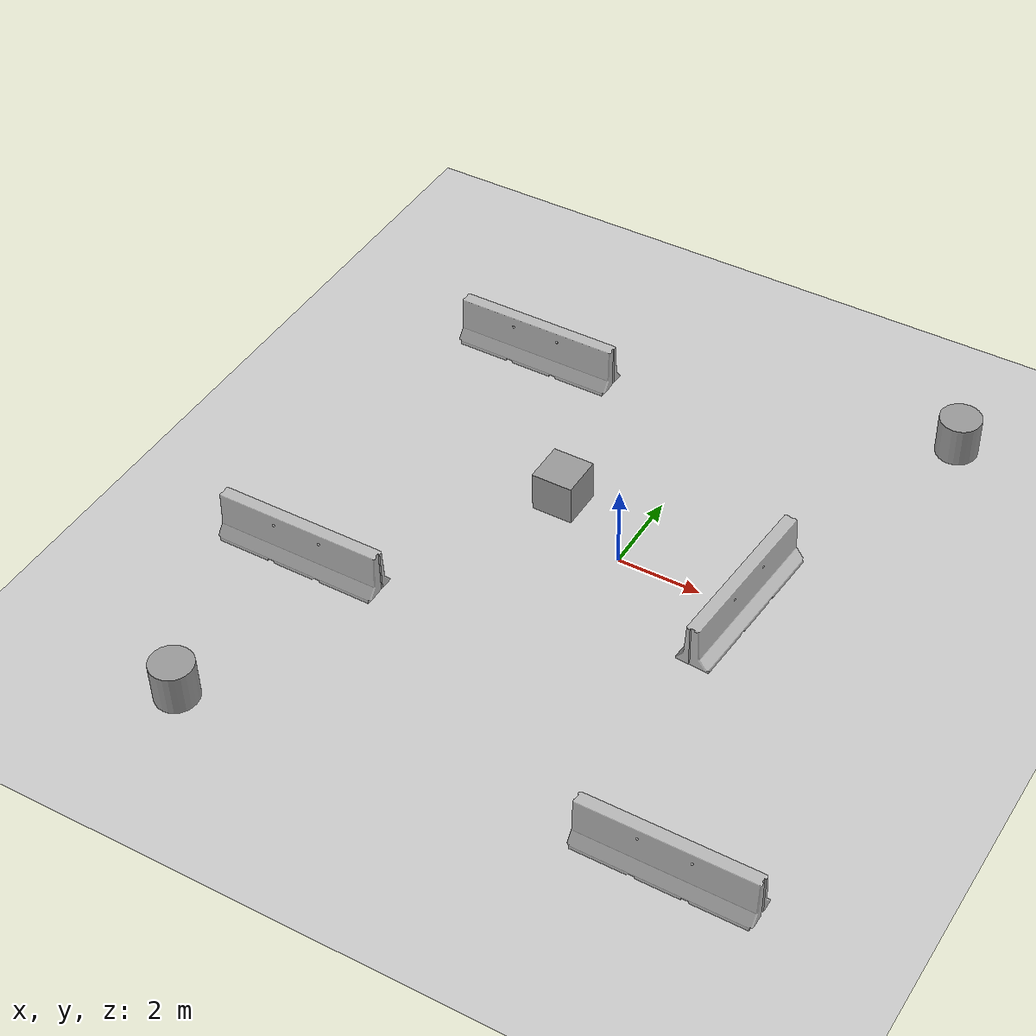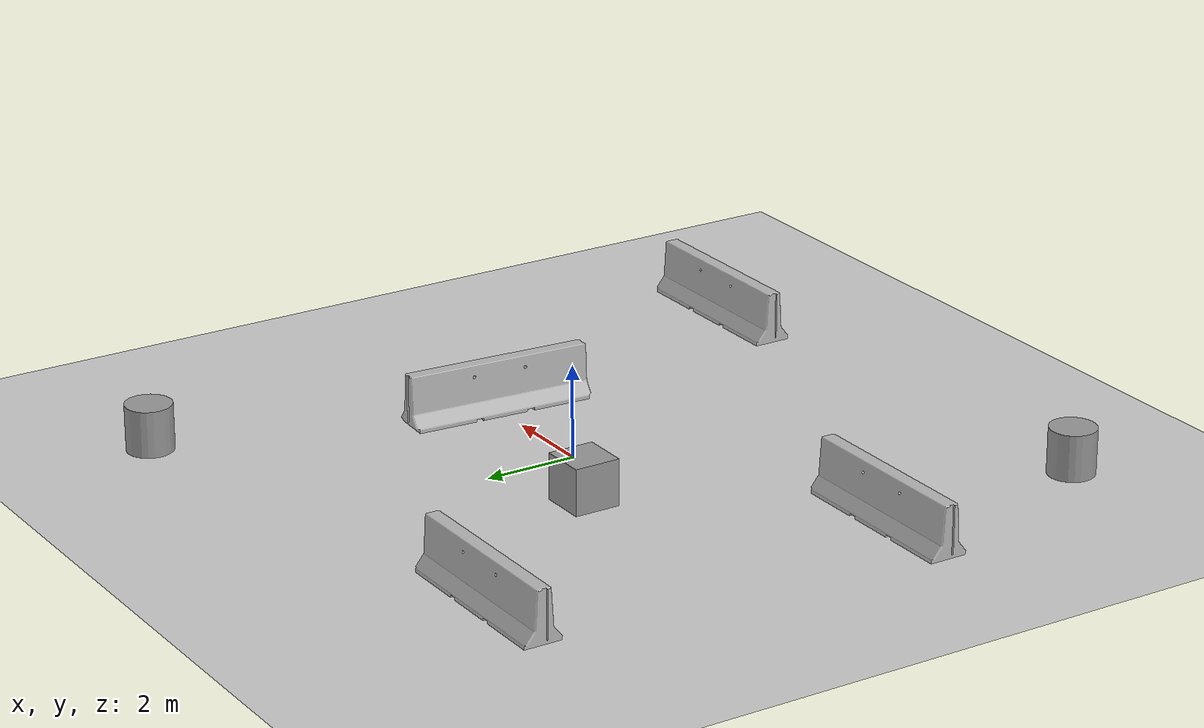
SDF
<sdf version="1.4">
 <world name="default">
  <light name="sun" type="directional">
   <pose>0 0 10 0 -0 0</pose>
   <diffuse>0.8 0.8 0.8 1</diffuse>
   <specular>0.2 0.2 0.2 1</specular>
   <attenuation>
    <range>1000</range>
    <constant>0.9</constant>
    <linear>0.01</linear>
    <quadratic>0.001</quadratic>
   </attenuation>
   <direction>-0.5 0.1 -0.9</direction>
  </light>
  <model name="ground_plane">
   <static>1</static>
   <link name="link">
    <collision name="collision">
     <geometry><plane><normal>0 0 1</normal><size>100 100</size></plane></geometry>
     <surface><friction><ode><mu>100</mu><mu2>50</mu2></ode></friction></surface>
    </collision>
    <visual name="visual">
     <cast_shadows>0</cast_shadows>
     <geometry><plane><normal>0 0 1</normal><size>100 100</size></plane></geometry>
     <material>
      <script><uri>file://media/materials/scripts/gazebo.material</uri><name>Gazebo/Grey</name></script>
     </material>
    </visual>
    <velocity_decay><linear>0</linear><angular>0</angular></velocity_decay>
   </link>
  </model>
  <physics type="ode">
   <max_step_size>0.001</max_step_size>
   <real_time_factor>1</real_time_factor>
   <real_time_update_rate>1000</real_time_update_rate>
   <gravity>0 0 -9.8</gravity>
  </physics>
  <scene><ambient>0.4 0.4 0.4 1</ambient><background>0.7 0.7 0.7 1</background><shadows>1</shadows></scene>
  <model name="jersey_barrier_0">
   <static>1</static>
   <link name="link">
    <visual name="visual">
     <geometry><mesh><uri>model://jersey_barrier/meshes/jersey_barrier.dae</uri></mesh></geometry>
    </visual>
    <collision name="upright">
     <pose>0 0 0.5715 0 -0 0</pose>
     <geometry><box><size>4.06542 0.3063 1.143</size></box></geometry>
    </collision>
    <collision name="base">
     <pose>0 0 0.032258 0 -0 0</pose>
     <geometry><box><size>4.06542 0.8107 0.064516</size></box></geometry>
    </collision>
    <collision name="base2">
     <pose>0 0 0.1 0 -0 0</pose>
     <geometry><box><size>4.06542 0.65 0.1</size></box></geometry>
    </collision>
    <collision name="base3">
     <pose>0 0 0.2 0 -0 0</pose>
     <geometry><box><size>4.06542 0.5 0.1</size></box></geometry>
    </collision>
    <collision name="left-angle">
     <pose>0 -0.224 0.2401 0.9 -0 0</pose>
     <geometry><box><size>4.06542 0.5 0.064516</size></box></geometry>
    </collision>
    <collision name="right-angle">
     <pose>0 0.224 0.2401 -0.9 0 0</pose>
     <geometry><box><size>4.06542 0.5 0.064516</size></box></geometry>
    </collision>
    <velocity_decay><linear>0</linear><angular>0</angular></velocity_decay>
   </link>
   <pose>-6 -3.4282 0 0 -0 0</pose>
  </model>
  <model name="jersey_barrier_1">
   <static>1</static>
   <link name="link">
    <visual name="visual">
     <geometry><mesh><uri>model://jersey_barrier/meshes/jersey_barrier.dae</uri></mesh></geometry>
    </visual>
    <collision name="upright">
     <pose>0 0 0.5715 0 -0 0</pose>
     <geometry><box><size>4.06542 0.3063 1.143</size></box></geometry>
    </collision>
    <collision name="base">
     <pose>0 0 0.032258 0 -0 0</pose>
     <geometry><box><size>4.06542 0.8107 0.064516</size></box></geometry>
    </collision>
    <collision name="base2">
     <pose>0 0 0.1 0 -0 0</pose>
     <geometry><box><size>4.06542 0.65 0.1</size></box></geometry>
    </collision>
    <collision name="base3">
     <pose>0 0 0.2 0 -0 0</pose>
     <geometry><box><size>4.06542 0.5 0.1</size></box></geometry>
    </collision>
    <collision name="left-angle">
     <pose>0 -0.224 0.2401 0.9 -0 0</pose>
     <geometry><box><size>4.06542 0.5 0.064516</size></box></geometry>
    </collision>
    <collision name="right-angle">
     <pose>0 0.224 0.2401 -0.9 0 0</pose>
     <geometry><box><size>4.06542 0.5 0.064516</size></box></geometry>
    </collision>
    <velocity_decay><linear>0</linear><angular>0</angular></velocity_decay>
   </link>
   <pose>3 0 0 0 0 -1.64</pose>
  </model>
  <model name="jersey_barrier_2">
   <static>1</static>
   <link name="link">
    <visual name="visual">
     <geometry><mesh><uri>model://jersey_barrier/meshes/jersey_barrier.dae</uri></mesh></geometry>
    </visual>
    <collision name="upright">
     <pose>0 0 0.5715 0 -0 0</pose>
     <geometry><box><size>4.06542 0.3063 1.143</size></box></geometry>
    </collision>
    <collision name="base">
     <pose>0 0 0.032258 0 -0 0</pose>
     <geometry><box><size>4.06542 0.8107 0.064516</size></box></geometry>
    </collision>
    <collision name="base2">
     <pose>0 0 0.1 0 -0 0</pose>
     <geometry><box><size>4.06542 0.65 0.1</size></box></geometry>
    </collision>
    <collision name="base3">
     <pose>0 0 0.2 0 -0 0</pose>
     <geometry><box><size>4.06542 0.5 0.1</size></box></geometry>
    </collision>
    <collision name="left-angle">
     <pose>0 -0.224 0.2401 0.9 -0 0</pose>
     <geometry><box><size>4.06542 0.5 0.064516</size></box></geometry>
    </collision>
    <collision name="right-angle">
     <pose>0 0.224 0.2401 -0.9 0 0</pose>
     <geometry><box><size>4.06542 0.5 0.064516</size></box></geometry>
    </collision>
    <velocity_decay><linear>0</linear><angular>0</angular></velocity_decay>
   </link>
   <pose>-5 5 0 0 -0 0</pose>
  </model>
  <model name="jersey_barrier_3">
   <static>1</static>
   <link name="link">
    <visual name="visual">
     <geometry><mesh><uri>model://jersey_barrier/meshes/jersey_barrier.dae</uri></mesh></geometry>
    </visual>
    <collision name="upright">
     <pose>0 0 0.5715 0 -0 0</pose>
     <geometry><box><size>4.06542 0.3063 1.143</size></box></geometry>
    </collision>
    <collision name="base">
     <pose>0 0 0.032258 0 -0 0</pose>
     <geometry><box><size>4.06542 0.8107 0.064516</size></box></geometry>
    </collision>
    <collision name="base2">
     <pose>0 0 0.1 0 -0 0</pose>
     <geometry><box><size>4.06542 0.65 0.1</size></box></geometry>
    </collision>
    <collision name="base3">
     <pose>0 0 0.2 0 -0 0</pose>
     <geometry><box><size>4.06542 0.5 0.1</size></box></geometry>
    </collision>
    <collision name="left-angle">
     <pose>0 -0.224 0.2401 0.9 -0 0</pose>
     <geometry><box><size>4.06542 0.5 0.064516</size></box></geometry>
    </collision>
    <collision name="right-angle">
     <pose>0 0.224 0.2401 -0.9 0 0</pose>
     <geometry><box><size>4.06542 0.5 0.064516</size></box></geometry>
    </collision>
    <velocity_decay><linear>0</linear><angular>0</angular></velocity_decay>
   </link>
   <pose>5 -7 0 0 -0 0</pose>
  </model>
  <model name="unit_box_1">
   <pose>-2 1 0.5 0 -0 0</pose>
   <link name="link">
    <inertial>
     <mass>1</mass>
     <inertia><ixx>1</ixx><ixy>0</ixy><ixz>0</ixz><iyy>1</iyy><iyz>0</iyz><izz>1</izz></inertia>
    </inertial>
    <collision name="collision"><geometry><box><size>1 1 1</size></box></geometry></collision>
    <visual name="visual">
     <geometry><box><size>1 1 1</size></box></geometry>
     <material>
      <script><uri>file://media/materials/scripts/gazebo.material</uri><name>Gazebo/Grey</name></script>
     </material>
    </visual>
    <velocity_decay><linear>0</linear><angular>0</angular></velocity_decay>
   </link>
   <static>0</static>
  </model>
  <model name="unit_cylinder_1">
   <pose>5 7 0.499998 0 -0 0</pose>
   <link name="link">
    <inertial>
     <mass>1</mass>
     <inertia><ixx>1</ixx><ixy>0</ixy><ixz>0</ixz><iyy>1</iyy><iyz>0</iyz><izz>1</izz></inertia>
    </inertial>
    <collision name="collision">
     <geometry><cylinder><radius>0.5</radius><length>1</length></cylinder></geometry>
    </collision>
    <visual name="visual">
     <geometry><cylinder><radius>0.5</radius><length>1</length></cylinder></geometry>
     <material>
      <script><uri>file://media/materials/scripts/gazebo.material</uri><name>Gazebo/Grey</name></script>
     </material>
    </visual>
    <velocity_decay><linear>0</linear><angular>0</angular></velocity_decay>
   </link>
   <static>0</static>
  </model>
  <model name="unit_cylinder_2">
   <pose>-6 -8 0.499992 0 -0 0</pose>
   <link name="link">
    <inertial>
     <mass>1</mass>
     <inertia><ixx>1</ixx><ixy>0</ixy><ixz>0</ixz><iyy>1</iyy><iyz>0</iyz><izz>1</izz></inertia>
    </inertial>
    <collision name="collision">
     <geometry><cylinder><radius>0.5</radius><length>1</length></cylinder></geometry>
    </collision>
    <visual name="visual">
     <geometry><cylinder><radius>0.5</radius><length>1</length></cylinder></geometry>
     <material>
      <script><uri>file://media/materials/scripts/gazebo.material</uri><name>Gazebo/Grey</name></script>
     </material>
    </visual>
    <velocity_decay><linear>0</linear><angular>0</angular></velocity_decay>
   </link>
   <static>0</static>
  </model>
 </world>
</sdf>
